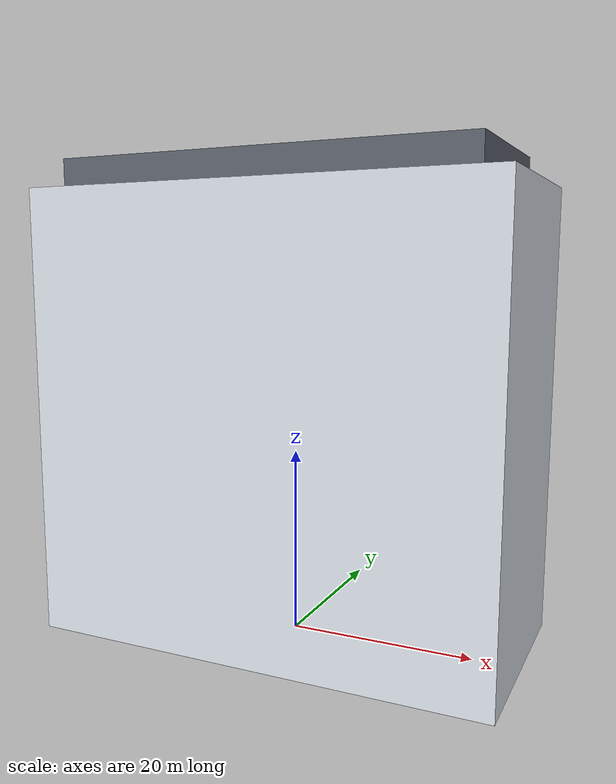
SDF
<?xml version="1.0" ?>
<sdf version="1.8">
  <model name="guandong_corner_tech_tower">
    <static>true</static>
    <link name="tower_link">
      <collision name="col"><pose>0 0 24.0 0 0 0</pose><geometry><box><size>50.0 24.0 48.0</size></box></geometry></collision>
      <visual name="main_vis"><pose>0 0 24.0 0 0 0</pose><geometry><box><size>50.0 24.0 48.0</size></box></geometry><material><ambient>0.74 0.76 0.78 1</ambient><diffuse>0.80 0.82 0.85 1</diffuse></material></visual>
      <visual name="curtain_vis"><pose>0 12.1 24.0 0 0 0</pose><geometry><box><size>46.0 0.2 42.0</size></box></geometry><material><ambient>0.15 0.28 0.42 0.9</ambient><diffuse>0.20 0.38 0.55 0.9</diffuse><specular>0.95 0.98 1.0 1</specular></material></visual>
      <visual name="bank_sign"><pose>0 12.2 4.8 0 0 0</pose><geometry><box><size>26.0 0.15 1.5</size></box></geometry><material><ambient>0.82 0.18 0.15 1</ambient><diffuse>0.95 0.22 0.18 1</diffuse><emissive>0.4 0.08 0.06 1</emissive></material></visual>
      <visual name="crown"><pose>0 0 49.5 0 0 0</pose><geometry><box><size>44.0 20.0 3.0</size></box></geometry><material><ambient>0.28 0.30 0.34 1</ambient><diffuse>0.34 0.36 0.40 1</diffuse></material></visual>
    </link>
  </model>
</sdf>
